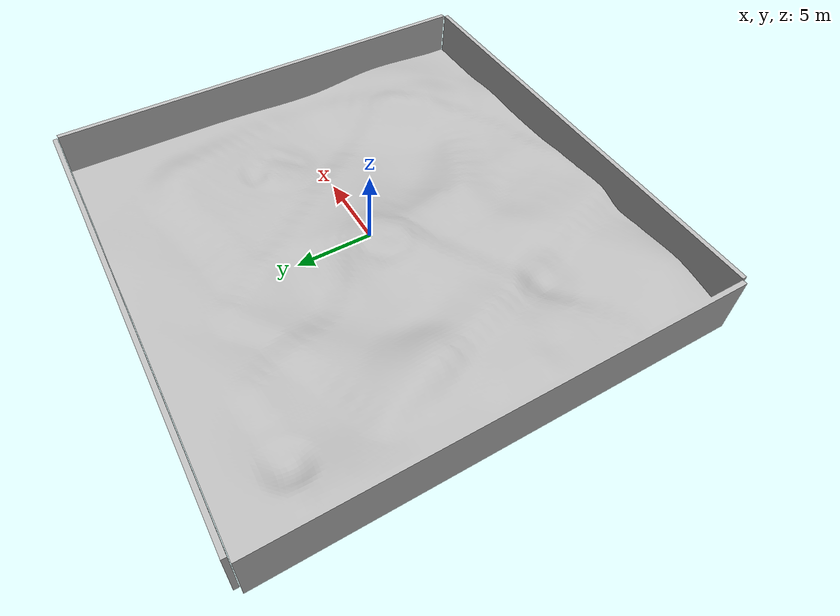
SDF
<sdf version='1.7'>
  <world name='default'>
    <plugin name="gazebo_ros_state" filename="libgazebo_ros_state.so">
      <ros>
        <namespace>/gazebo</namespace>
      </ros>
    </plugin>

    <light name='sun' type='directional'>
      <cast_shadows>1</cast_shadows>
      <pose>0 0 10 0 -0 0</pose>
      <diffuse>0.8 0.8 0.8 1</diffuse>
      <specular>0.2 0.2 0.2 1</specular>
      <attenuation>
        <range>1000</range>
        <constant>0.9</constant>
        <linear>0.01</linear>
        <quadratic>0.001</quadratic>
      </attenuation>
      <direction>-0.5 0.1 -0.9</direction>
      <spot>
        <inner_angle>0</inner_angle>
        <outer_angle>0</outer_angle>
        <falloff>0</falloff>
      </spot>
    </light>
    <gravity>0 0 -9.8</gravity>
    <magnetic_field>6e-06 2.3e-05 -4.2e-05</magnetic_field>
    <atmosphere type='adiabatic'/>
    <physics type='ode'>
      <max_step_size>0.001</max_step_size>
      <real_time_factor>1</real_time_factor>
      <real_time_update_rate>1000</real_time_update_rate>
      <ode>
        <solver>
          <type>quick</type>
          <iters>150</iters>
          <sor>1.3</sor>
          <!-- 与 terrain.world 一致：各向同性库仑摩擦，减少坡面侧滑。 -->
          <friction_model>cone_model</friction_model>
        </solver>
        <constraints>
          <cfm>0.0</cfm>
          <erp>0.2</erp>
          <contact_max_correcting_vel>1.0</contact_max_correcting_vel>
          <contact_surface_layer>0.001</contact_surface_layer>
        </constraints>
      </ode>
    </physics>
    <scene>
      <ambient>0.4 0.4 0.4 1</ambient>
      <background>0.7 0.7 0.7 1</background>
      <shadows>1</shadows>
    </scene>
    <audio>
      <device>default</device>
    </audio>
    <wind/>
    <spherical_coordinates>
      <surface_model>EARTH_WGS84</surface_model>
      <latitude_deg>0</latitude_deg>
      <longitude_deg>0</longitude_deg>
      <elevation>0</elevation>
      <heading_deg>0</heading_deg>
    </spherical_coordinates>
    <model name='terrain_with_wall'>
      <static>1</static>
      <link name='link'>
        <visual name='visual'>
          <geometry>
            <mesh>
              <uri>model://terrain_with_wall/meshes/terrain_with_walls.stl</uri>
            </mesh>
          </geometry>
        </visual>
        <collision name='collision'>
          <geometry>
            <mesh>
              <uri>model://terrain_with_wall/meshes/terrain_with_walls.stl</uri>
            </mesh>
          </geometry>
          <max_contacts>80</max_contacts>
          <surface>
            <contact>
              <ode>
                <soft_cfm>0.0</soft_cfm>
                <soft_erp>0.2</soft_erp>
                <kp>1e6</kp>
                <kd>100</kd>
                <max_vel>0.1</max_vel>
                <min_depth>0.001</min_depth>
              </ode>
            </contact>
            <bounce>
              <restitution_coefficient>0.0</restitution_coefficient>
              <threshold>1e9</threshold>
            </bounce>
            <friction>
              <torsional>
                <coefficient>1.0</coefficient>
                <use_patch_radius>1</use_patch_radius>
                <patch_radius>0.02</patch_radius>
                <surface_radius>0.05</surface_radius>
                <ode>
                  <slip>0.0</slip>
                </ode>
              </torsional>
              <ode>
                <mu>8.0</mu>
                <mu2>8.0</mu2>
                <slip1>0.0</slip1>
                <slip2>0.0</slip2>
              </ode>
            </friction>
          </surface>
        </collision>
        <self_collide>0</self_collide>
        <enable_wind>0</enable_wind>
        <kinematic>0</kinematic>
      </link>
      <!-- Keep Gazebo world coordinates identical to the source STL / PCD. -->
      <pose>0 0 0 0 0 0</pose>
    </model>
    <gui fullscreen='0'>
      <camera name='user_camera'>
        <pose>-40.5345 -4.43377 34.8654 0 0.703644 -0.026101</pose>
        <view_controller>orbit</view_controller>
        <projection_type>perspective</projection_type>
      </camera>
    </gui>
  </world>
</sdf>
